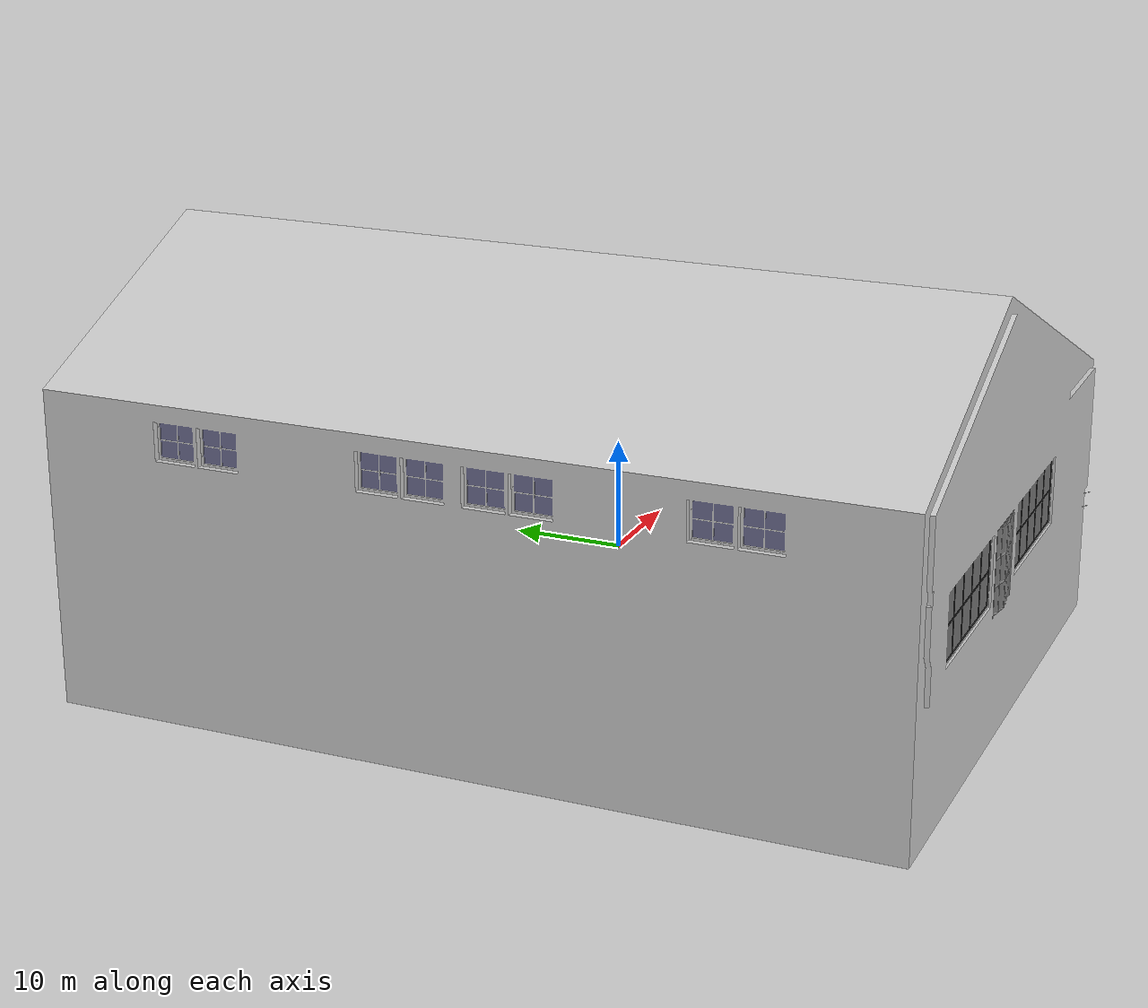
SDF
<?xml version="1.0"?>
<sdf version="1.5">
  <model name="pool">
    <static>true</static>
    <link name="pool_link">
      <collision name="pool_collision">
        <geometry>
          <mesh>
            <uri>model://pool/meshes/pool.dae</uri>
          </mesh>
        </geometry>
      </collision>
      <visual name="pool_visual">
        <cast_shadows>true</cast_shadows>
        <geometry>
          <mesh>
            <uri>model://pool/meshes/pool.dae</uri>
          </mesh>
        </geometry>
      </visual>
    </link>
  </model>
</sdf>
